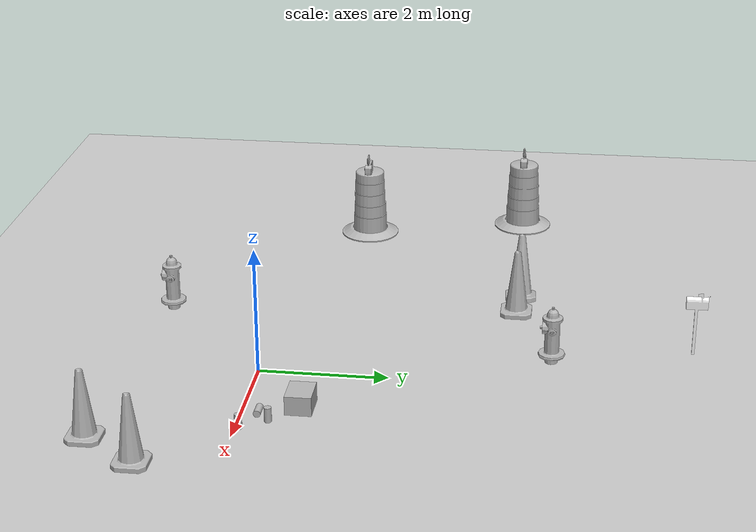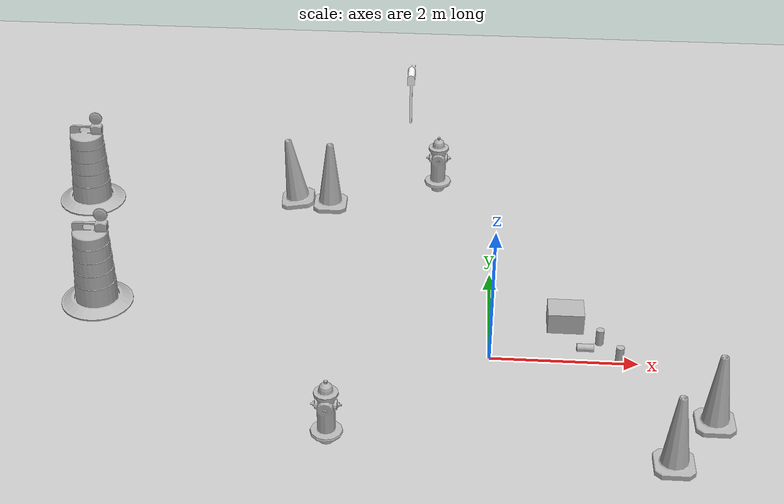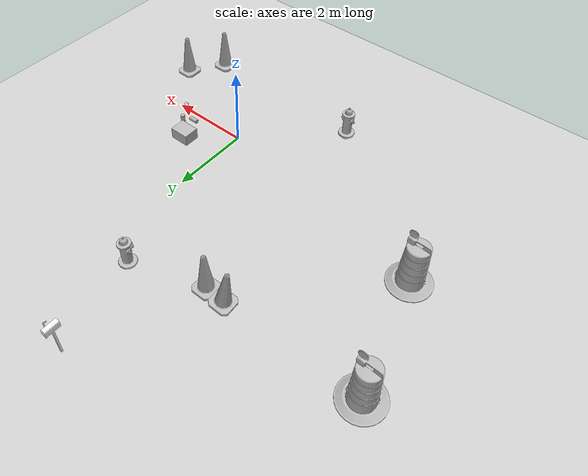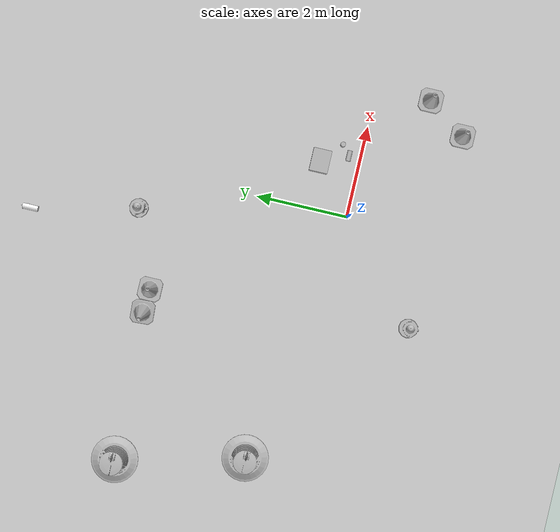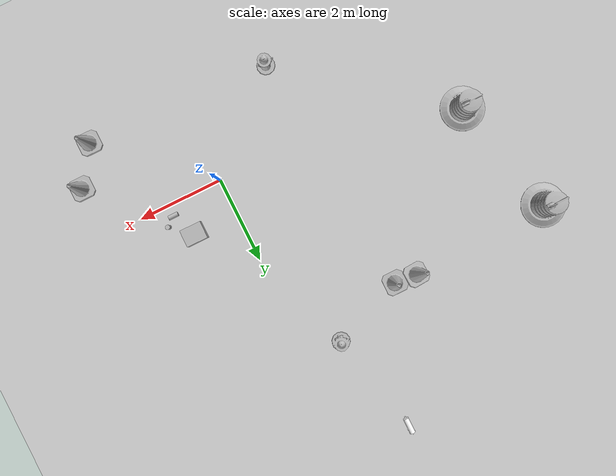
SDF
<sdf version="1.7">
 <world name="default">
  <light name="sun" type="directional">
   <pose>0 0 10 0 -0 0</pose>
   <diffuse>0.8 0.8 0.8 1</diffuse>
   <specular>0.2 0.2 0.2 1</specular>
   <attenuation>
    <range>1000</range>
    <constant>0.9</constant>
    <linear>0.01</linear>
    <quadratic>0.001</quadratic>
   </attenuation>
   <direction>-0.5 0.1 -0.9</direction>
   <spot><inner_angle>0</inner_angle><outer_angle>0</outer_angle><falloff>0</falloff></spot>
  </light>
  <model name="ground_plane">
   <static>1</static>
   <link name="link">
    <collision name="collision">
     <geometry><plane><normal>0 0 1</normal><size>100 100</size></plane></geometry>
     <surface>
      <contact><collide_bitmask>65535</collide_bitmask></contact>
      <friction><ode><mu>100</mu><mu2>50</mu2></ode></friction>
     </surface>
    </collision>
    <visual name="visual">
     <cast_shadows>0</cast_shadows>
     <geometry><plane><normal>0 0 1</normal><size>100 100</size></plane></geometry>
     <material>
      <script><uri>file://media/materials/scripts/gazebo.material</uri><name>Gazebo/Grey</name></script>
     </material>
    </visual>
   </link>
  </model>
  <gravity>0 0 -9.8</gravity>
  <magnetic_field>6e-06 2.3e-05 -4.2e-05</magnetic_field>
  <atmosphere type="adiabatic"/>
  <physics type="ode">
   <max_step_size>0.001</max_step_size>
   <real_time_factor>1</real_time_factor>
   <real_time_update_rate>1000</real_time_update_rate>
  </physics>
  <scene><ambient>0.4 0.4 0.4 1</ambient><background>0.7 0.7 0.7 1</background><shadows>1</shadows></scene>
  <spherical_coordinates>
   <surface_model>EARTH_WGS84</surface_model>
   <latitude_deg>0</latitude_deg>
   <longitude_deg>0</longitude_deg>
   <elevation>0</elevation>
   <heading_deg>0</heading_deg>
  </spherical_coordinates>
  <model name="beer">
   <link name="link">
    <pose>0 0 0.115 0 -0 0</pose>
    <inertial>
     <mass>0.39</mass>
     <inertia><ixx>0.00058</ixx><ixy>0</ixy><ixz>0</ixz><iyy>0.00058</iyy><iyz>0</iyz><izz>0.00019</izz></inertia>
    </inertial>
    <collision name="collision">
     <geometry><cylinder><radius>0.055</radius><length>0.23</length></cylinder></geometry>
    </collision>
    <visual name="visual">
     <geometry><cylinder><radius>0.055</radius><length>0.23</length></cylinder></geometry>
     <material>
      <script>
       <uri>model://beer/materials/scripts</uri>
       <uri>model://beer/materials/textures</uri>
       <name>Beer/Diffuse</name>
      </script>
     </material>
    </visual>
   </link>
   <pose>1.18357 0.257554 0.055 2.75631 1.57041 2.75631</pose>
  </model>
  <model name="beer_0">
   <link name="link">
    <pose>0 0 0.115 0 -0 0</pose>
    <inertial>
     <mass>0.39</mass>
     <inertia><ixx>0.00058</ixx><ixy>0</ixy><ixz>0</ixz><iyy>0.00058</iyy><iyz>0</iyz><izz>0.00019</izz></inertia>
    </inertial>
    <collision name="collision">
     <geometry><cylinder><radius>0.055</radius><length>0.23</length></cylinder></geometry>
    </collision>
    <visual name="visual">
     <geometry><cylinder><radius>0.055</radius><length>0.23</length></cylinder></geometry>
     <material>
      <script>
       <uri>model://beer/materials/scripts</uri>
       <uri>model://beer/materials/textures</uri>
       <name>Beer/Diffuse</name>
      </script>
     </material>
    </visual>
   </link>
   <pose>1.50222 0.440487 -2e-06 0 -0 -1.6e-05</pose>
  </model>
  <model name="beer_1">
   <link name="link">
    <pose>0 0 0.115 0 -0 0</pose>
    <inertial>
     <mass>0.39</mass>
     <inertia><ixx>0.00058</ixx><ixy>0</ixy><ixz>0</ixz><iyy>0.00058</iyy><iyz>0</iyz><izz>0.00019</izz></inertia>
    </inertial>
    <collision name="collision">
     <geometry><cylinder><radius>0.055</radius><length>0.23</length></cylinder></geometry>
    </collision>
    <visual name="visual">
     <geometry><cylinder><radius>0.055</radius><length>0.23</length></cylinder></geometry>
     <material>
      <script>
       <uri>model://beer/materials/scripts</uri>
       <uri>model://beer/materials/textures</uri>
       <name>Beer/Diffuse</name>
      </script>
     </material>
    </visual>
   </link>
   <pose>1.74624 0.058517 -7e-06 0 0 -1.5e-05</pose>
  </model>
  <model name="cardboard_box">
   <pose>1.04715 0.838518 0.149 0 -0 0</pose>
   <link name="link">
    <inertial>
     <mass>2</mass>
     <inertia>
      <ixx>0.0416667</ixx>
      <ixy>0</ixy>
      <ixz>0</ixz>
      <iyy>0.0566667</iyy>
      <iyz>0</iyz>
      <izz>0.0683333</izz>
     </inertia>
    </inertial>
    <collision name="collision">
     <geometry><box><size>0.5 0.4 0.3</size></box></geometry>
     <surface>
      <friction><ode><mu>1</mu><mu2>1</mu2></ode></friction>
      <contact><ode><kp>1e+07</kp><kd>1</kd><min_depth>0.001</min_depth><max_vel>0.1</max_vel></ode></contact>
     </surface>
    </collision>
    <visual name="visual">
     <pose>0 0 -0.15 0 -0 0</pose>
     <geometry>
      <mesh><uri>model://cardboard_box/meshes/cardboard_box.dae</uri><scale>1.25932 1.00745 0.755591</scale></mesh>
     </geometry>
    </visual>
   </link>
  </model>
  <model name="Construction Barrel">
   <link name="link">
    <inertial>
     <pose>0 0 0.4 0 -0 0</pose>
     <mass>500</mass>
     <inertia><ixx>51.2096</ixx><iyy>51.2096</iyy><izz>25</izz><ixy>0</ixy><ixz>0</ixz><iyz>0</iyz></inertia>
    </inertial>
    <collision name="collision">
     <geometry><mesh><uri>model://construction_barrel/meshes/construction_barrel.dae</uri></mesh></geometry>
    </collision>
    <visual name="visual">
     <geometry><mesh><uri>model://construction_barrel/meshes/construction_barrel.dae</uri></mesh></geometry>
    </visual>
   </link>
   <pose>-5.57309 0.962135 -1e-06 0 5e-06 -2e-05</pose>
  </model>
  <model name="Construction Barrel_0">
   <link name="link">
    <inertial>
     <pose>0 0 0.4 0 -0 0</pose>
     <mass>500</mass>
     <inertia><ixx>51.2096</ixx><iyy>51.2096</iyy><izz>25</izz><ixy>0</ixy><ixz>0</ixz><iyz>0</iyz></inertia>
    </inertial>
    <collision name="collision">
     <geometry><mesh><uri>model://construction_barrel/meshes/construction_barrel.dae</uri></mesh></geometry>
    </collision>
    <visual name="visual">
     <geometry><mesh><uri>model://construction_barrel/meshes/construction_barrel.dae</uri></mesh></geometry>
    </visual>
   </link>
   <pose>-6.2419 3.70518 0 0 -0 -2.1e-05</pose>
  </model>
  <model name="fire_hydrant">
   <static>1</static>
   <link name="link">
    <collision name="collision">
     <geometry><mesh><uri>model://fire_hydrant/meshes/fire_hydrant.dae</uri></mesh></geometry>
    </collision>
    <visual name="visual">
     <geometry><mesh><uri>model://fire_hydrant/meshes/fire_hydrant.dae</uri></mesh></geometry>
    </visual>
   </link>
   <pose>-2.0424 -1.82529 0 0 -0 0</pose>
  </model>
  <model name="fire_hydrant_0">
   <static>1</static>
   <link name="link">
    <collision name="collision">
     <geometry><mesh><uri>model://fire_hydrant/meshes/fire_hydrant.dae</uri></mesh></geometry>
    </collision>
    <visual name="visual">
     <geometry><mesh><uri>model://fire_hydrant/meshes/fire_hydrant.dae</uri></mesh></geometry>
    </visual>
   </link>
   <pose>-0.828729 4.42052 0 0 -0 0</pose>
  </model>
  <model name="Mailbox">
   <link name="link">
    <collision name="collision">
     <geometry><mesh><uri>model://mailbox/meshes/mailbox.dae</uri></mesh></geometry>
    </collision>
    <visual name="visual">
     <geometry><mesh><uri>model://mailbox/meshes/mailbox.dae</uri></mesh></geometry>
     <material>
      <script>
       <uri>model://mailbox/materials/scripts</uri>
       <uri>model://mailbox/materials/textures</uri>
       <name>Mailbox/Diffuse</name>
      </script>
     </material>
    </visual>
    <inertial>
     <inertia><ixx>1</ixx><ixy>0</ixy><ixz>0</ixz><iyy>1</iyy><iyz>0</iyz><izz>1</izz></inertia>
     <mass>1</mass>
    </inertial>
   </link>
   <pose>-1.35724 6.60173 -1e-05 -7e-06 -4e-06 0</pose>
  </model>
  <model name="Construction Cone">
   <link name="link">
    <collision name="collision">
     <geometry>
      <mesh><scale>10 10 10</scale><uri>model://construction_cone/meshes/construction_cone.dae</uri></mesh>
     </geometry>
    </collision>
    <visual name="visual">
     <geometry>
      <mesh><scale>10 10 10</scale><uri>model://construction_cone/meshes/construction_cone.dae</uri></mesh>
     </geometry>
    </visual>
    <inertial>
     <inertia><ixx>1</ixx><ixy>0</ixy><ixz>0</ixz><iyy>1</iyy><iyz>0</iyz><izz>1</izz></inertia>
     <mass>1</mass>
    </inertial>
   </link>
   <pose>2.26726 -2.03978 -4e-06 4e-06 -1e-06 0</pose>
  </model>
  <model name="Construction Cone_0">
   <link name="link">
    <collision name="collision">
     <geometry>
      <mesh><scale>10 10 10</scale><uri>model://construction_cone/meshes/construction_cone.dae</uri></mesh>
     </geometry>
    </collision>
    <visual name="visual">
     <geometry>
      <mesh><scale>10 10 10</scale><uri>model://construction_cone/meshes/construction_cone.dae</uri></mesh>
     </geometry>
    </visual>
    <inertial>
     <inertia><ixx>1</ixx><ixy>0</ixy><ixz>0</ixz><iyy>1</iyy><iyz>0</iyz><izz>1</izz></inertia>
     <mass>1</mass>
    </inertial>
   </link>
   <pose>2.86457 -1.19772 -0 0 -0 0</pose>
  </model>
  <model name="Construction Cone_1">
   <link name="link">
    <collision name="collision">
     <geometry>
      <mesh><scale>10 10 10</scale><uri>model://construction_cone/meshes/construction_cone.dae</uri></mesh>
     </geometry>
    </collision>
    <visual name="visual">
     <geometry>
      <mesh><scale>10 10 10</scale><uri>model://construction_cone/meshes/construction_cone.dae</uri></mesh>
     </geometry>
    </visual>
    <inertial>
     <inertia><ixx>1</ixx><ixy>0</ixy><ixz>0</ixz><iyy>1</iyy><iyz>0</iyz><izz>1</izz></inertia>
     <mass>1</mass>
    </inertial>
   </link>
   <pose>-2.9918 3.83697 0.03615 -0.000719 -0.135715 0.052538</pose>
  </model>
  <model name="Construction Cone_2">
   <link name="link">
    <collision name="collision">
     <geometry>
      <mesh><scale>10 10 10</scale><uri>model://construction_cone/meshes/construction_cone.dae</uri></mesh>
     </geometry>
    </collision>
    <visual name="visual">
     <geometry>
      <mesh><scale>10 10 10</scale><uri>model://construction_cone/meshes/construction_cone.dae</uri></mesh>
     </geometry>
    </visual>
    <inertial>
     <inertia><ixx>1</ixx><ixy>0</ixy><ixz>0</ixz><iyy>1</iyy><iyz>0</iyz><izz>1</izz></inertia>
     <mass>1</mass>
    </inertial>
   </link>
   <pose>-2.48666 3.79303 -3.6e-05 2e-06 -4e-06 -0.004214</pose>
  </model>
 </world>
</sdf>
